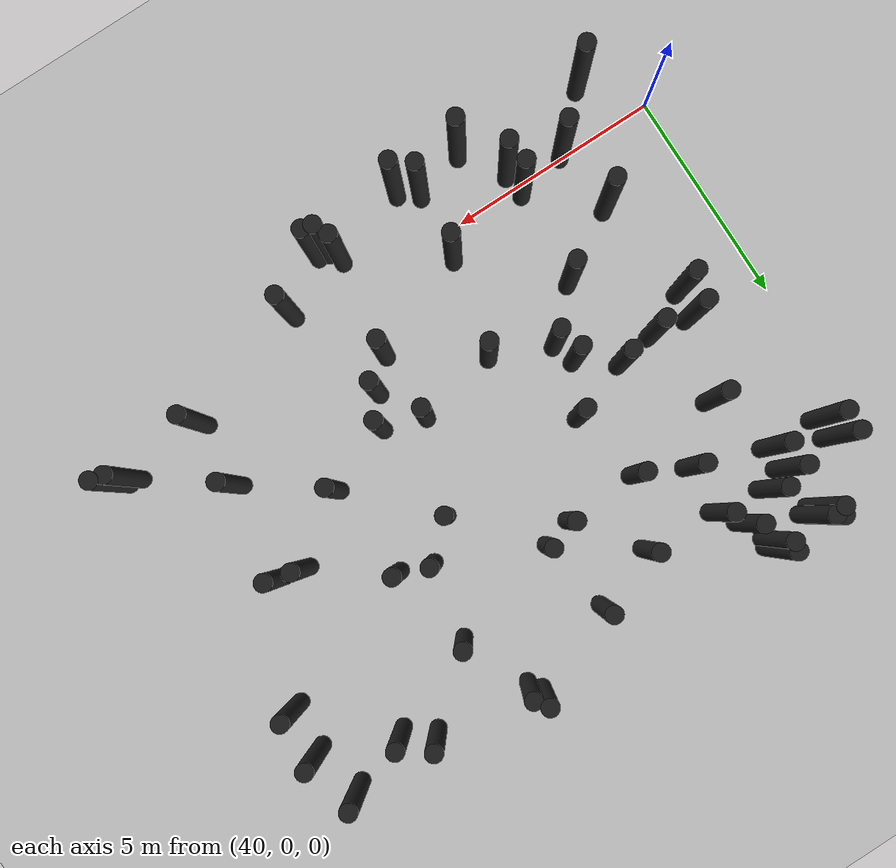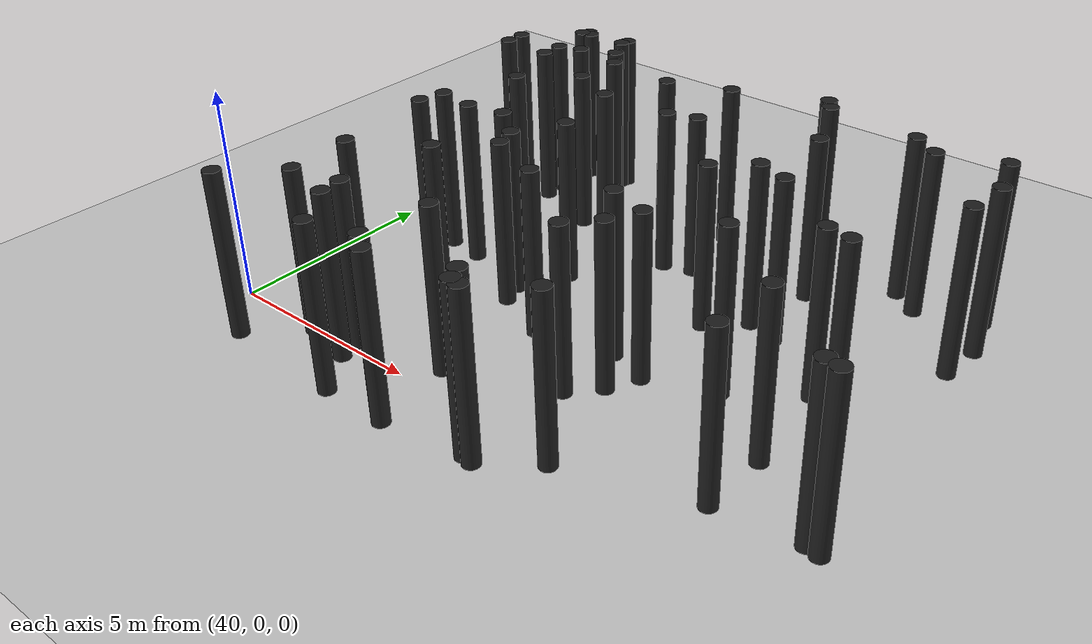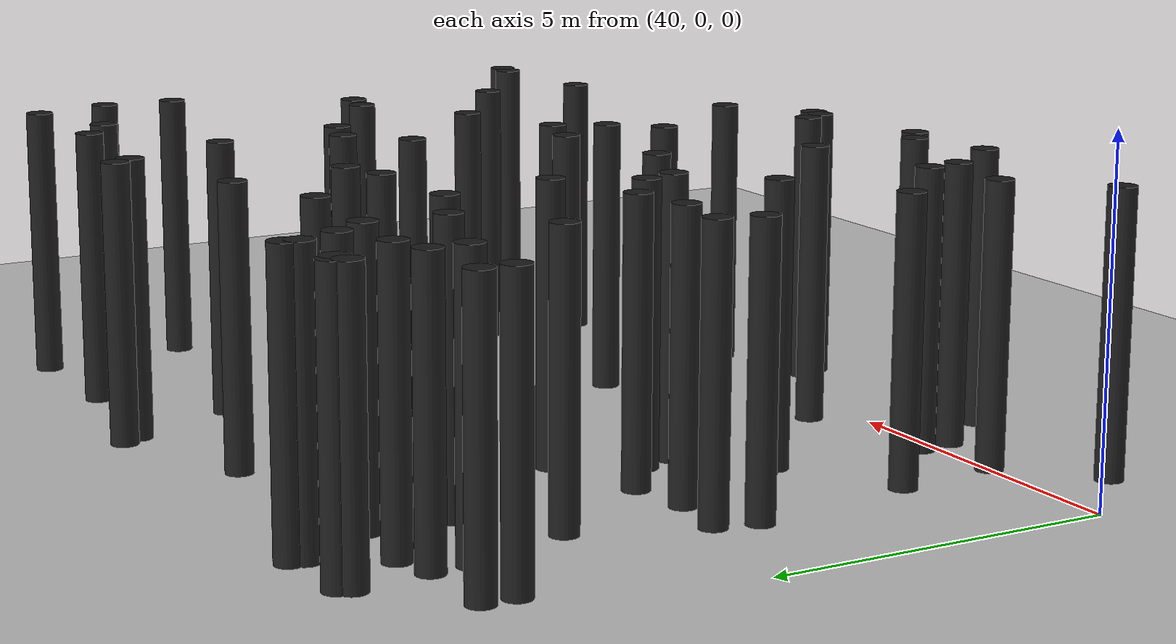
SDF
<sdf version="1.7">
 <world name="default">
  <model name="ground_plane">
   <static>1</static>
   <link name="link">
    <collision name="collision">
     <geometry><plane><normal>0 0 1</normal><size>200 200</size></plane></geometry>
     <surface><friction><ode><mu>100</mu><mu2>50</mu2></ode></friction></surface>
    </collision>
    <visual name="visual">
     <cast_shadows>0</cast_shadows>
     <geometry><plane><normal>0 0 1</normal><size>200 200</size></plane></geometry>
     <material>
      <script><uri>file://media/materials/scripts/gazebo.material</uri><name>Gazebo/Grey</name></script>
     </material>
    </visual>
   </link>
  </model>
  <model name="forest_clone_19_0">
   <pose>48.0424 3.29449 0.00499 0 -0 0</pose>
   <static>1</static>
   <link name="cylinder::link">
    <inertial>
     <mass>1</mass>
     <inertia><ixx>0.083</ixx><ixy>0</ixy><ixz>0</ixz><iyy>0.083</iyy><iyz>0</iyz><izz>0.083</izz></inertia>
    </inertial>
    <collision name="collision">
     <geometry><cylinder><radius>0.2</radius><length>4</length></cylinder></geometry>
    </collision>
    <visual name="visual">
     <geometry><cylinder><radius>0.2</radius><length>4</length></cylinder></geometry>
     <material>
      <script><uri>file://media/materials/scripts/gazebo.material</uri><name>Gazebo/Black</name></script>
     </material>
    </visual>
    <pose>0 0 2 0 -0 0</pose>
   </link>
  </model>
  <model name="forest_clone_29_0">
   <pose>43.5072 9.02108 -0.00067 0 -0 0</pose>
   <static>1</static>
   <link name="cylinder::link">
    <inertial>
     <mass>1</mass>
     <inertia><ixx>0.083</ixx><ixy>0</ixy><ixz>0</ixz><iyy>0.083</iyy><iyz>0</iyz><izz>0.083</izz></inertia>
    </inertial>
    <collision name="collision">
     <geometry><cylinder><radius>0.2</radius><length>4</length></cylinder></geometry>
    </collision>
    <visual name="visual">
     <geometry><cylinder><radius>0.2</radius><length>4</length></cylinder></geometry>
     <material>
      <script><uri>file://media/materials/scripts/gazebo.material</uri><name>Gazebo/Black</name></script>
     </material>
    </visual>
    <pose>0 0 2 0 -0 0</pose>
   </link>
  </model>
  <model name="forest_clone_34_0">
   <pose>41.9639 4.60308 -0.00078 0 -0 0</pose>
   <static>1</static>
   <link name="cylinder::link">
    <inertial>
     <mass>1</mass>
     <inertia><ixx>0.083</ixx><ixy>0</ixy><ixz>0</ixz><iyy>0.083</iyy><iyz>0</iyz><izz>0.083</izz></inertia>
    </inertial>
    <collision name="collision">
     <geometry><cylinder><radius>0.2</radius><length>4</length></cylinder></geometry>
    </collision>
    <visual name="visual">
     <geometry><cylinder><radius>0.2</radius><length>4</length></cylinder></geometry>
     <material>
      <script><uri>file://media/materials/scripts/gazebo.material</uri><name>Gazebo/Black</name></script>
     </material>
    </visual>
    <pose>0 0 2 0 -0 0</pose>
   </link>
  </model>
  <model name="forest_clone_43_0">
   <pose>45.8727 -1.3063 -0.00399 0 -0 0</pose>
   <static>1</static>
   <link name="cylinder::link">
    <inertial>
     <mass>1</mass>
     <inertia><ixx>0.083</ixx><ixy>0</ixy><ixz>0</ixz><iyy>0.083</iyy><iyz>0</iyz><izz>0.083</izz></inertia>
    </inertial>
    <collision name="collision">
     <geometry><cylinder><radius>0.2</radius><length>4</length></cylinder></geometry>
    </collision>
    <visual name="visual">
     <geometry><cylinder><radius>0.2</radius><length>4</length></cylinder></geometry>
     <material>
      <script><uri>file://media/materials/scripts/gazebo.material</uri><name>Gazebo/Black</name></script>
     </material>
    </visual>
    <pose>0 0 2 0 -0 0</pose>
   </link>
  </model>
  <model name="forest_clone_68_0">
   <pose>42.6809 8.6734 0.00253 0 -0 0</pose>
   <static>1</static>
   <link name="cylinder::link">
    <inertial>
     <mass>1</mass>
     <inertia><ixx>0.083</ixx><ixy>0</ixy><ixz>0</ixz><iyy>0.083</iyy><iyz>0</iyz><izz>0.083</izz></inertia>
    </inertial>
    <collision name="collision">
     <geometry><cylinder><radius>0.2</radius><length>4</length></cylinder></geometry>
    </collision>
    <visual name="visual">
     <geometry><cylinder><radius>0.2</radius><length>4</length></cylinder></geometry>
     <material>
      <script><uri>file://media/materials/scripts/gazebo.material</uri><name>Gazebo/Black</name></script>
     </material>
    </visual>
    <pose>0 0 2 0 -0 0</pose>
   </link>
  </model>
  <model name="forest_clone_82_0">
   <pose>42.0772 9.74618 0.00089 0 -0 0</pose>
   <static>1</static>
   <link name="cylinder::link">
    <inertial>
     <mass>1</mass>
     <inertia><ixx>0.083</ixx><ixy>0</ixy><ixz>0</ixz><iyy>0.083</iyy><iyz>0</iyz><izz>0.083</izz></inertia>
    </inertial>
    <collision name="collision">
     <geometry><cylinder><radius>0.2</radius><length>4</length></cylinder></geometry>
    </collision>
    <visual name="visual">
     <geometry><cylinder><radius>0.2</radius><length>4</length></cylinder></geometry>
     <material>
      <script><uri>file://media/materials/scripts/gazebo.material</uri><name>Gazebo/Black</name></script>
     </material>
    </visual>
    <pose>0 0 2 0 -0 0</pose>
   </link>
  </model>
  <model name="forest_clone_85_0">
   <pose>49.3415 9.45384 -0.00236 0 -0 0</pose>
   <static>1</static>
   <link name="cylinder::link">
    <inertial>
     <mass>1</mass>
     <inertia><ixx>0.083</ixx><ixy>0</ixy><ixz>0</ixz><iyy>0.083</iyy><iyz>0</iyz><izz>0.083</izz></inertia>
    </inertial>
    <collision name="collision">
     <geometry><cylinder><radius>0.2</radius><length>4</length></cylinder></geometry>
    </collision>
    <visual name="visual">
     <geometry><cylinder><radius>0.2</radius><length>4</length></cylinder></geometry>
     <material>
      <script><uri>file://media/materials/scripts/gazebo.material</uri><name>Gazebo/Black</name></script>
     </material>
    </visual>
    <pose>0 0 2 0 -0 0</pose>
   </link>
  </model>
  <model name="forest_clone_96_0">
   <pose>42.1526 1.51779 0.00212 0 -0 0</pose>
   <static>1</static>
   <link name="cylinder::link">
    <inertial>
     <mass>1</mass>
     <inertia><ixx>0.083</ixx><ixy>0</ixy><ixz>0</ixz><iyy>0.083</iyy><iyz>0</iyz><izz>0.083</izz></inertia>
    </inertial>
    <collision name="collision">
     <geometry><cylinder><radius>0.2</radius><length>4</length></cylinder></geometry>
    </collision>
    <visual name="visual">
     <geometry><cylinder><radius>0.2</radius><length>4</length></cylinder></geometry>
     <material>
      <script><uri>file://media/materials/scripts/gazebo.material</uri><name>Gazebo/Black</name></script>
     </material>
    </visual>
    <pose>0 0 2 0 -0 0</pose>
   </link>
  </model>
  <model name="forest_clone_102_0">
   <pose>42.3065 -0.032337 -0.00285 0 -0 0</pose>
   <static>1</static>
   <link name="cylinder::link">
    <inertial>
     <mass>1</mass>
     <inertia><ixx>0.083</ixx><ixy>0</ixy><ixz>0</ixz><iyy>0.083</iyy><iyz>0</iyz><izz>0.083</izz></inertia>
    </inertial>
    <collision name="collision">
     <geometry><cylinder><radius>0.2</radius><length>4</length></cylinder></geometry>
    </collision>
    <visual name="visual">
     <geometry><cylinder><radius>0.2</radius><length>4</length></cylinder></geometry>
     <material>
      <script><uri>file://media/materials/scripts/gazebo.material</uri><name>Gazebo/Black</name></script>
     </material>
    </visual>
    <pose>0 0 2 0 -0 0</pose>
   </link>
  </model>
  <model name="forest_clone_122_0">
   <pose>52.2105 8.79004 0.00262 0 -0 0</pose>
   <static>1</static>
   <link name="cylinder::link">
    <inertial>
     <mass>1</mass>
     <inertia><ixx>0.083</ixx><ixy>0</ixy><ixz>0</ixz><iyy>0.083</iyy><iyz>0</iyz><izz>0.083</izz></inertia>
    </inertial>
    <collision name="collision">
     <geometry><cylinder><radius>0.2</radius><length>4</length></cylinder></geometry>
    </collision>
    <visual name="visual">
     <geometry><cylinder><radius>0.2</radius><length>4</length></cylinder></geometry>
     <material>
      <script><uri>file://media/materials/scripts/gazebo.material</uri><name>Gazebo/Black</name></script>
     </material>
    </visual>
    <pose>0 0 2 0 -0 0</pose>
   </link>
  </model>
  <model name="forest_clone_125_0">
   <pose>40.8361 8.01843 0.00203 0 -0 0</pose>
   <static>1</static>
   <link name="cylinder::link">
    <inertial>
     <mass>1</mass>
     <inertia><ixx>0.083</ixx><ixy>0</ixy><ixz>0</ixz><iyy>0.083</iyy><iyz>0</iyz><izz>0.083</izz></inertia>
    </inertial>
    <collision name="collision">
     <geometry><cylinder><radius>0.2</radius><length>4</length></cylinder></geometry>
    </collision>
    <visual name="visual">
     <geometry><cylinder><radius>0.2</radius><length>4</length></cylinder></geometry>
     <material>
      <script><uri>file://media/materials/scripts/gazebo.material</uri><name>Gazebo/Black</name></script>
     </material>
    </visual>
    <pose>0 0 2 0 -0 0</pose>
   </link>
  </model>
  <model name="forest_clone_129_0">
   <pose>41.1575 -1.13078 -0.00331 0 -0 0</pose>
   <static>1</static>
   <link name="cylinder::link">
    <inertial>
     <mass>1</mass>
     <inertia><ixx>0.083</ixx><ixy>0</ixy><ixz>0</ixz><iyy>0.083</iyy><iyz>0</iyz><izz>0.083</izz></inertia>
    </inertial>
    <collision name="collision">
     <geometry><cylinder><radius>0.2</radius><length>4</length></cylinder></geometry>
    </collision>
    <visual name="visual">
     <geometry><cylinder><radius>0.2</radius><length>4</length></cylinder></geometry>
     <material>
      <script><uri>file://media/materials/scripts/gazebo.material</uri><name>Gazebo/Black</name></script>
     </material>
    </visual>
    <pose>0 0 2 0 -0 0</pose>
   </link>
  </model>
  <model name="forest_clone_131_0">
   <pose>50.5506 3.59292 -0.00168 0 -0 0</pose>
   <static>1</static>
   <link name="cylinder::link">
    <inertial>
     <mass>1</mass>
     <inertia><ixx>0.083</ixx><ixy>0</ixy><ixz>0</ixz><iyy>0.083</iyy><iyz>0</iyz><izz>0.083</izz></inertia>
    </inertial>
    <collision name="collision">
     <geometry><cylinder><radius>0.2</radius><length>4</length></cylinder></geometry>
    </collision>
    <visual name="visual">
     <geometry><cylinder><radius>0.2</radius><length>4</length></cylinder></geometry>
     <material>
      <script><uri>file://media/materials/scripts/gazebo.material</uri><name>Gazebo/Black</name></script>
     </material>
    </visual>
    <pose>0 0 2 0 -0 0</pose>
   </link>
  </model>
  <model name="forest_clone_134_0">
   <pose>48.1218 -1.08161 -0.00447 0 -0 0</pose>
   <static>1</static>
   <link name="cylinder::link">
    <inertial>
     <mass>1</mass>
     <inertia><ixx>0.083</ixx><ixy>0</ixy><ixz>0</ixz><iyy>0.083</iyy><iyz>0</iyz><izz>0.083</izz></inertia>
    </inertial>
    <collision name="collision">
     <geometry><cylinder><radius>0.2</radius><length>4</length></cylinder></geometry>
    </collision>
    <visual name="visual">
     <geometry><cylinder><radius>0.2</radius><length>4</length></cylinder></geometry>
     <material>
      <script><uri>file://media/materials/scripts/gazebo.material</uri><name>Gazebo/Black</name></script>
     </material>
    </visual>
    <pose>0 0 2 0 -0 0</pose>
   </link>
  </model>
  <model name="forest_clone_135_0">
   <pose>48.6354 2.26541 -0.00223 0 -0 0</pose>
   <static>1</static>
   <link name="cylinder::link">
    <inertial>
     <mass>1</mass>
     <inertia><ixx>0.083</ixx><ixy>0</ixy><ixz>0</ixz><iyy>0.083</iyy><iyz>0</iyz><izz>0.083</izz></inertia>
    </inertial>
    <collision name="collision">
     <geometry><cylinder><radius>0.2</radius><length>4</length></cylinder></geometry>
    </collision>
    <visual name="visual">
     <geometry><cylinder><radius>0.2</radius><length>4</length></cylinder></geometry>
     <material>
      <script><uri>file://media/materials/scripts/gazebo.material</uri><name>Gazebo/Black</name></script>
     </material>
    </visual>
    <pose>0 0 2 0 -0 0</pose>
   </link>
  </model>
  <model name="forest_clone_139_0">
   <pose>43.8027 4.63031 0.00215 0 -0 0</pose>
   <static>1</static>
   <link name="cylinder::link">
    <inertial>
     <mass>1</mass>
     <inertia><ixx>0.083</ixx><ixy>0</ixy><ixz>0</ixz><iyy>0.083</iyy><iyz>0</iyz><izz>0.083</izz></inertia>
    </inertial>
    <collision name="collision">
     <geometry><cylinder><radius>0.2</radius><length>4</length></cylinder></geometry>
    </collision>
    <visual name="visual">
     <geometry><cylinder><radius>0.2</radius><length>4</length></cylinder></geometry>
     <material>
      <script><uri>file://media/materials/scripts/gazebo.material</uri><name>Gazebo/Black</name></script>
     </material>
    </visual>
    <pose>0 0 2 0 -0 0</pose>
   </link>
  </model>
  <model name="forest_clone_143_0">
   <pose>54.1416 0.960834 0.00128 0 -0 0</pose>
   <static>1</static>
   <link name="cylinder::link">
    <inertial>
     <mass>1</mass>
     <inertia><ixx>0.083</ixx><ixy>0</ixy><ixz>0</ixz><iyy>0.083</iyy><iyz>0</iyz><izz>0.083</izz></inertia>
    </inertial>
    <collision name="collision">
     <geometry><cylinder><radius>0.2</radius><length>4</length></cylinder></geometry>
    </collision>
    <visual name="visual">
     <geometry><cylinder><radius>0.2</radius><length>4</length></cylinder></geometry>
     <material>
      <script><uri>file://media/materials/scripts/gazebo.material</uri><name>Gazebo/Black</name></script>
     </material>
    </visual>
    <pose>0 0 2 0 -0 0</pose>
   </link>
  </model>
  <model name="forest_clone_3_clone_0">
   <pose>47.3433 7.12182 0.00023 0 -0 0</pose>
   <static>1</static>
   <link name="cylinder::link">
    <inertial>
     <mass>1</mass>
     <inertia><ixx>0.083</ixx><ixy>0</ixy><ixz>0</ixz><iyy>0.083</iyy><iyz>0</iyz><izz>0.083</izz></inertia>
    </inertial>
    <collision name="collision">
     <geometry><cylinder><radius>0.2</radius><length>4</length></cylinder></geometry>
    </collision>
    <visual name="visual">
     <geometry><cylinder><radius>0.2</radius><length>4</length></cylinder></geometry>
     <material>
      <script><uri>file://media/materials/scripts/gazebo.material</uri><name>Gazebo/Black</name></script>
     </material>
    </visual>
    <pose>0 0 2 0 -0 0</pose>
   </link>
  </model>
  <model name="forest_clone_3_clone_0_clone">
   <pose>49.6477 6.09228 0.00023 0 -0 0</pose>
   <static>1</static>
   <link name="cylinder::link">
    <inertial>
     <mass>1</mass>
     <inertia><ixx>0.083</ixx><ixy>0</ixy><ixz>0</ixz><iyy>0.083</iyy><iyz>0</iyz><izz>0.083</izz></inertia>
    </inertial>
    <collision name="collision">
     <geometry><cylinder><radius>0.2</radius><length>4</length></cylinder></geometry>
    </collision>
    <visual name="visual">
     <geometry><cylinder><radius>0.2</radius><length>4</length></cylinder></geometry>
     <material>
      <script><uri>file://media/materials/scripts/gazebo.material</uri><name>Gazebo/Black</name></script>
     </material>
    </visual>
    <pose>0 0 2 0 -0 0</pose>
   </link>
  </model>
  <model name="forest_clone_14_1">
   <pose>48.0483 1.63203 -0.0015 0 -0 0</pose>
   <static>1</static>
   <link name="cylinder::link">
    <inertial>
     <mass>1</mass>
     <inertia><ixx>0.083</ixx><ixy>0</ixy><ixz>0</ixz><iyy>0.083</iyy><iyz>0</iyz><izz>0.083</izz></inertia>
    </inertial>
    <collision name="collision">
     <geometry><cylinder><radius>0.2</radius><length>4</length></cylinder></geometry>
    </collision>
    <visual name="visual">
     <geometry><cylinder><radius>0.2</radius><length>4</length></cylinder></geometry>
     <material>
      <script><uri>file://media/materials/scripts/gazebo.material</uri><name>Gazebo/Black</name></script>
     </material>
    </visual>
    <pose>0 0 2 0 -0 0</pose>
   </link>
  </model>
  <model name="forest_clone_19_1">
   <pose>45.6048 0.637672 -0.0012 0 -0 0</pose>
   <static>1</static>
   <link name="cylinder::link">
    <inertial>
     <mass>1</mass>
     <inertia><ixx>0.083</ixx><ixy>0</ixy><ixz>0</ixz><iyy>0.083</iyy><iyz>0</iyz><izz>0.083</izz></inertia>
    </inertial>
    <collision name="collision">
     <geometry><cylinder><radius>0.2</radius><length>4</length></cylinder></geometry>
    </collision>
    <visual name="visual">
     <geometry><cylinder><radius>0.2</radius><length>4</length></cylinder></geometry>
     <material>
      <script><uri>file://media/materials/scripts/gazebo.material</uri><name>Gazebo/Black</name></script>
     </material>
    </visual>
    <pose>0 0 2 0 -0 0</pose>
   </link>
  </model>
  <model name="forest_clone_21_1">
   <pose>42.8881 4.47036 0.00469 0 -0 0</pose>
   <static>1</static>
   <link name="cylinder::link">
    <inertial>
     <mass>1</mass>
     <inertia><ixx>0.083</ixx><ixy>0</ixy><ixz>0</ixz><iyy>0.083</iyy><iyz>0</iyz><izz>0.083</izz></inertia>
    </inertial>
    <collision name="collision">
     <geometry><cylinder><radius>0.2</radius><length>4</length></cylinder></geometry>
    </collision>
    <visual name="visual">
     <geometry><cylinder><radius>0.2</radius><length>4</length></cylinder></geometry>
     <material>
      <script><uri>file://media/materials/scripts/gazebo.material</uri><name>Gazebo/Black</name></script>
     </material>
    </visual>
    <pose>0 0 2 0 -0 0</pose>
   </link>
  </model>
  <model name="forest_clone_25_1">
   <pose>47.0556 8.89095 0.00485 0 -0 0</pose>
   <static>1</static>
   <link name="cylinder::link">
    <inertial>
     <mass>1</mass>
     <inertia><ixx>0.083</ixx><ixy>0</ixy><ixz>0</ixz><iyy>0.083</iyy><iyz>0</iyz><izz>0.083</izz></inertia>
    </inertial>
    <collision name="collision">
     <geometry><cylinder><radius>0.2</radius><length>4</length></cylinder></geometry>
    </collision>
    <visual name="visual">
     <geometry><cylinder><radius>0.2</radius><length>4</length></cylinder></geometry>
     <material>
      <script><uri>file://media/materials/scripts/gazebo.material</uri><name>Gazebo/Black</name></script>
     </material>
    </visual>
    <pose>0 0 2 0 -0 0</pose>
   </link>
  </model>
  <model name="forest_clone_35_1">
   <pose>52.6114 4.53154 -0.00362 0 -0 0</pose>
   <static>1</static>
   <link name="cylinder::link">
    <inertial>
     <mass>1</mass>
     <inertia><ixx>0.083</ixx><ixy>0</ixy><ixz>0</ixz><iyy>0.083</iyy><iyz>0</iyz><izz>0.083</izz></inertia>
    </inertial>
    <collision name="collision">
     <geometry><cylinder><radius>0.2</radius><length>4</length></cylinder></geometry>
    </collision>
    <visual name="visual">
     <geometry><cylinder><radius>0.2</radius><length>4</length></cylinder></geometry>
     <material>
      <script><uri>file://media/materials/scripts/gazebo.material</uri><name>Gazebo/Black</name></script>
     </material>
    </visual>
    <pose>0 0 2 0 -0 0</pose>
   </link>
  </model>
  <model name="forest_clone_40_1">
   <pose>41.8175 3.99241 -0.00416 0 -0 0</pose>
   <static>1</static>
   <link name="cylinder::link">
    <inertial>
     <mass>1</mass>
     <inertia><ixx>0.083</ixx><ixy>0</ixy><ixz>0</ixz><iyy>0.083</iyy><iyz>0</iyz><izz>0.083</izz></inertia>
    </inertial>
    <collision name="collision">
     <geometry><cylinder><radius>0.2</radius><length>4</length></cylinder></geometry>
    </collision>
    <visual name="visual">
     <geometry><cylinder><radius>0.2</radius><length>4</length></cylinder></geometry>
     <material>
      <script><uri>file://media/materials/scripts/gazebo.material</uri><name>Gazebo/Black</name></script>
     </material>
    </visual>
    <pose>0 0 2 0 -0 0</pose>
   </link>
  </model>
  <model name="forest_clone_55_1">
   <pose>42.2085 9.64438 0.00137 0 -0 0</pose>
   <static>1</static>
   <link name="cylinder::link">
    <inertial>
     <mass>1</mass>
     <inertia><ixx>0.083</ixx><ixy>0</ixy><ixz>0</ixz><iyy>0.083</iyy><iyz>0</iyz><izz>0.083</izz></inertia>
    </inertial>
    <collision name="collision">
     <geometry><cylinder><radius>0.2</radius><length>4</length></cylinder></geometry>
    </collision>
    <visual name="visual">
     <geometry><cylinder><radius>0.2</radius><length>4</length></cylinder></geometry>
     <material>
      <script><uri>file://media/materials/scripts/gazebo.material</uri><name>Gazebo/Black</name></script>
     </material>
    </visual>
    <pose>0 0 2 0 -0 0</pose>
   </link>
  </model>
  <model name="forest_clone_57_1">
   <pose>52.2542 0.733148 -0.00216 0 -0 0</pose>
   <static>1</static>
   <link name="cylinder::link">
    <inertial>
     <mass>1</mass>
     <inertia><ixx>0.083</ixx><ixy>0</ixy><ixz>0</ixz><iyy>0.083</iyy><iyz>0</iyz><izz>0.083</izz></inertia>
    </inertial>
    <collision name="collision">
     <geometry><cylinder><radius>0.2</radius><length>4</length></cylinder></geometry>
    </collision>
    <visual name="visual">
     <geometry><cylinder><radius>0.2</radius><length>4</length></cylinder></geometry>
     <material>
      <script><uri>file://media/materials/scripts/gazebo.material</uri><name>Gazebo/Black</name></script>
     </material>
    </visual>
    <pose>0 0 2 0 -0 0</pose>
   </link>
  </model>
  <model name="forest_clone_73_1">
   <pose>54.4463 0.898385 0.00175 0 -0 0</pose>
   <static>1</static>
   <link name="cylinder::link">
    <inertial>
     <mass>1</mass>
     <inertia><ixx>0.083</ixx><ixy>0</ixy><ixz>0</ixz><iyy>0.083</iyy><iyz>0</iyz><izz>0.083</izz></inertia>
    </inertial>
    <collision name="collision">
     <geometry><cylinder><radius>0.2</radius><length>4</length></cylinder></geometry>
    </collision>
    <visual name="visual">
     <geometry><cylinder><radius>0.2</radius><length>4</length></cylinder></geometry>
     <material>
      <script><uri>file://media/materials/scripts/gazebo.material</uri><name>Gazebo/Black</name></script>
     </material>
    </visual>
    <pose>0 0 2 0 -0 0</pose>
   </link>
  </model>
  <model name="forest_clone_75_1">
   <pose>47.8763 -1.02607 -0.00248 0 -0 0</pose>
   <static>1</static>
   <link name="cylinder::link">
    <inertial>
     <mass>1</mass>
     <inertia><ixx>0.083</ixx><ixy>0</ixy><ixz>0</ixz><iyy>0.083</iyy><iyz>0</iyz><izz>0.083</izz></inertia>
    </inertial>
    <collision name="collision">
     <geometry><cylinder><radius>0.2</radius><length>4</length></cylinder></geometry>
    </collision>
    <visual name="visual">
     <geometry><cylinder><radius>0.2</radius><length>4</length></cylinder></geometry>
     <material>
      <script><uri>file://media/materials/scripts/gazebo.material</uri><name>Gazebo/Black</name></script>
     </material>
    </visual>
    <pose>0 0 2 0 -0 0</pose>
   </link>
  </model>
  <model name="forest_clone_92_1">
   <pose>47.7128 -0.696898 -0.00268 0 -0 0</pose>
   <static>1</static>
   <link name="cylinder::link">
    <inertial>
     <mass>1</mass>
     <inertia><ixx>0.083</ixx><ixy>0</ixy><ixz>0</ixz><iyy>0.083</iyy><iyz>0</iyz><izz>0.083</izz></inertia>
    </inertial>
    <collision name="collision">
     <geometry><cylinder><radius>0.2</radius><length>4</length></cylinder></geometry>
    </collision>
    <visual name="visual">
     <geometry><cylinder><radius>0.2</radius><length>4</length></cylinder></geometry>
     <material>
      <script><uri>file://media/materials/scripts/gazebo.material</uri><name>Gazebo/Black</name></script>
     </material>
    </visual>
    <pose>0 0 2 0 -0 0</pose>
   </link>
  </model>
  <model name="forest_clone_95_1">
   <pose>44.9181 6.85127 0.00438 0 -0 0</pose>
   <static>1</static>
   <link name="cylinder::link">
    <inertial>
     <mass>1</mass>
     <inertia><ixx>0.083</ixx><ixy>0</ixy><ixz>0</ixz><iyy>0.083</iyy><iyz>0</iyz><izz>0.083</izz></inertia>
    </inertial>
    <collision name="collision">
     <geometry><cylinder><radius>0.2</radius><length>4</length></cylinder></geometry>
    </collision>
    <visual name="visual">
     <geometry><cylinder><radius>0.2</radius><length>4</length></cylinder></geometry>
     <material>
      <script><uri>file://media/materials/scripts/gazebo.material</uri><name>Gazebo/Black</name></script>
     </material>
    </visual>
    <pose>0 0 2 0 -0 0</pose>
   </link>
  </model>
  <model name="forest_clone_100_1">
   <pose>45.4383 -0.979306 -0.00011 0 -0 0</pose>
   <static>1</static>
   <link name="cylinder::link">
    <inertial>
     <mass>1</mass>
     <inertia><ixx>0.083</ixx><ixy>0</ixy><ixz>0</ixz><iyy>0.083</iyy><iyz>0</iyz><izz>0.083</izz></inertia>
    </inertial>
    <collision name="collision">
     <geometry><cylinder><radius>0.2</radius><length>4</length></cylinder></geometry>
    </collision>
    <visual name="visual">
     <geometry><cylinder><radius>0.2</radius><length>4</length></cylinder></geometry>
     <material>
      <script><uri>file://media/materials/scripts/gazebo.material</uri><name>Gazebo/Black</name></script>
     </material>
    </visual>
    <pose>0 0 2 0 -0 0</pose>
   </link>
  </model>
  <model name="forest_clone_118_1">
   <pose>43.206 9.64206 0.00489 0 -0 0</pose>
   <static>1</static>
   <link name="cylinder::link">
    <inertial>
     <mass>1</mass>
     <inertia><ixx>0.083</ixx><ixy>0</ixy><ixz>0</ixz><iyy>0.083</iyy><iyz>0</iyz><izz>0.083</izz></inertia>
    </inertial>
    <collision name="collision">
     <geometry><cylinder><radius>0.2</radius><length>4</length></cylinder></geometry>
    </collision>
    <visual name="visual">
     <geometry><cylinder><radius>0.2</radius><length>4</length></cylinder></geometry>
     <material>
      <script><uri>file://media/materials/scripts/gazebo.material</uri><name>Gazebo/Black</name></script>
     </material>
    </visual>
    <pose>0 0 2 0 -0 0</pose>
   </link>
  </model>
  <model name="forest_clone_120_1">
   <pose>49.2925 -0.235182 0.00052 0 -0 0</pose>
   <static>1</static>
   <link name="cylinder::link">
    <inertial>
     <mass>1</mass>
     <inertia><ixx>0.083</ixx><ixy>0</ixy><ixz>0</ixz><iyy>0.083</iyy><iyz>0</iyz><izz>0.083</izz></inertia>
    </inertial>
    <collision name="collision">
     <geometry><cylinder><radius>0.2</radius><length>4</length></cylinder></geometry>
    </collision>
    <visual name="visual">
     <geometry><cylinder><radius>0.2</radius><length>4</length></cylinder></geometry>
     <material>
      <script><uri>file://media/materials/scripts/gazebo.material</uri><name>Gazebo/Black</name></script>
     </material>
    </visual>
    <pose>0 0 2 0 -0 0</pose>
   </link>
  </model>
  <model name="forest_clone_135_1">
   <pose>42.1132 8.50287 -0.00285 0 -0 0</pose>
   <static>1</static>
   <link name="cylinder::link">
    <inertial>
     <mass>1</mass>
     <inertia><ixx>0.083</ixx><ixy>0</ixy><ixz>0</ixz><iyy>0.083</iyy><iyz>0</iyz><izz>0.083</izz></inertia>
    </inertial>
    <collision name="collision">
     <geometry><cylinder><radius>0.2</radius><length>4</length></cylinder></geometry>
    </collision>
    <visual name="visual">
     <geometry><cylinder><radius>0.2</radius><length>4</length></cylinder></geometry>
     <material>
      <script><uri>file://media/materials/scripts/gazebo.material</uri><name>Gazebo/Black</name></script>
     </material>
    </visual>
    <pose>0 0 2 0 -0 0</pose>
   </link>
  </model>
  <model name="forest_clone_136_1">
   <pose>43.5039 0.214935 -0.00047 0 -0 0</pose>
   <static>1</static>
   <link name="cylinder::link">
    <inertial>
     <mass>1</mass>
     <inertia><ixx>0.083</ixx><ixy>0</ixy><ixz>0</ixz><iyy>0.083</iyy><iyz>0</iyz><izz>0.083</izz></inertia>
    </inertial>
    <collision name="collision">
     <geometry><cylinder><radius>0.2</radius><length>4</length></cylinder></geometry>
    </collision>
    <visual name="visual">
     <geometry><cylinder><radius>0.2</radius><length>4</length></cylinder></geometry>
     <material>
      <script><uri>file://media/materials/scripts/gazebo.material</uri><name>Gazebo/Black</name></script>
     </material>
    </visual>
    <pose>0 0 2 0 -0 0</pose>
   </link>
  </model>
  <model name="forest_clone_138_1">
   <pose>48.9907 2.98593 -0.00275 0 -0 0</pose>
   <static>1</static>
   <link name="cylinder::link">
    <inertial>
     <mass>1</mass>
     <inertia><ixx>0.083</ixx><ixy>0</ixy><ixz>0</ixz><iyy>0.083</iyy><iyz>0</iyz><izz>0.083</izz></inertia>
    </inertial>
    <collision name="collision">
     <geometry><cylinder><radius>0.2</radius><length>4</length></cylinder></geometry>
    </collision>
    <visual name="visual">
     <geometry><cylinder><radius>0.2</radius><length>4</length></cylinder></geometry>
     <material>
      <script><uri>file://media/materials/scripts/gazebo.material</uri><name>Gazebo/Black</name></script>
     </material>
    </visual>
    <pose>0 0 2 0 -0 0</pose>
   </link>
  </model>
  <model name="forest_clone_146_1">
   <pose>43.5696 -0.32348 -0.00194 0 -0 0</pose>
   <static>1</static>
   <link name="cylinder::link">
    <inertial>
     <mass>1</mass>
     <inertia><ixx>0.083</ixx><ixy>0</ixy><ixz>0</ixz><iyy>0.083</iyy><iyz>0</iyz><izz>0.083</izz></inertia>
    </inertial>
    <collision name="collision">
     <geometry><cylinder><radius>0.2</radius><length>4</length></cylinder></geometry>
    </collision>
    <visual name="visual">
     <geometry><cylinder><radius>0.2</radius><length>4</length></cylinder></geometry>
     <material>
      <script><uri>file://media/materials/scripts/gazebo.material</uri><name>Gazebo/Black</name></script>
     </material>
    </visual>
    <pose>0 0 2 0 -0 0</pose>
   </link>
  </model>
  <model name="forest_clone_4_2">
   <pose>40.8382 8.49759 0.00306 0 -0 0</pose>
   <static>1</static>
   <link name="cylinder::link">
    <inertial>
     <mass>1</mass>
     <inertia><ixx>0.083</ixx><ixy>0</ixy><ixz>0</ixz><iyy>0.083</iyy><iyz>0</iyz><izz>0.083</izz></inertia>
    </inertial>
    <collision name="collision">
     <geometry><cylinder><radius>0.2</radius><length>4</length></cylinder></geometry>
    </collision>
    <visual name="visual">
     <geometry><cylinder><radius>0.2</radius><length>4</length></cylinder></geometry>
     <material>
      <script><uri>file://media/materials/scripts/gazebo.material</uri><name>Gazebo/Black</name></script>
     </material>
    </visual>
    <pose>0 0 2 0 -0 0</pose>
   </link>
  </model>
  <model name="forest_clone_7_2">
   <pose>43.8747 8.50761 -0.00041 0 -0 0</pose>
   <static>1</static>
   <link name="cylinder::link">
    <inertial>
     <mass>1</mass>
     <inertia><ixx>0.083</ixx><ixy>0</ixy><ixz>0</ixz><iyy>0.083</iyy><iyz>0</iyz><izz>0.083</izz></inertia>
    </inertial>
    <collision name="collision">
     <geometry><cylinder><radius>0.2</radius><length>4</length></cylinder></geometry>
    </collision>
    <visual name="visual">
     <geometry><cylinder><radius>0.2</radius><length>4</length></cylinder></geometry>
     <material>
      <script><uri>file://media/materials/scripts/gazebo.material</uri><name>Gazebo/Black</name></script>
     </material>
    </visual>
    <pose>0 0 2 0 -0 0</pose>
   </link>
  </model>
  <model name="forest_clone_9_2">
   <pose>46.6575 6.91629 -0.00113 0 -0 0</pose>
   <static>1</static>
   <link name="cylinder::link">
    <inertial>
     <mass>1</mass>
     <inertia><ixx>0.083</ixx><ixy>0</ixy><ixz>0</ixz><iyy>0.083</iyy><iyz>0</iyz><izz>0.083</izz></inertia>
    </inertial>
    <collision name="collision">
     <geometry><cylinder><radius>0.2</radius><length>4</length></cylinder></geometry>
    </collision>
    <visual name="visual">
     <geometry><cylinder><radius>0.2</radius><length>4</length></cylinder></geometry>
     <material>
      <script><uri>file://media/materials/scripts/gazebo.material</uri><name>Gazebo/Black</name></script>
     </material>
    </visual>
    <pose>0 0 2 0 -0 0</pose>
   </link>
  </model>
  <model name="forest_clone_10_2">
   <pose>45.5876 8.35977 0.00354 0 -0 0</pose>
   <static>1</static>
   <link name="cylinder::link">
    <inertial>
     <mass>1</mass>
     <inertia><ixx>0.083</ixx><ixy>0</ixy><ixz>0</ixz><iyy>0.083</iyy><iyz>0</iyz><izz>0.083</izz></inertia>
    </inertial>
    <collision name="collision">
     <geometry><cylinder><radius>0.2</radius><length>4</length></cylinder></geometry>
    </collision>
    <visual name="visual">
     <geometry><cylinder><radius>0.2</radius><length>4</length></cylinder></geometry>
     <material>
      <script><uri>file://media/materials/scripts/gazebo.material</uri><name>Gazebo/Black</name></script>
     </material>
    </visual>
    <pose>0 0 2 0 -0 0</pose>
   </link>
  </model>
  <model name="forest_clone_18_2">
   <pose>42.1149 7.94785 0.00176 0 -0 0</pose>
   <static>1</static>
   <link name="cylinder::link">
    <inertial>
     <mass>1</mass>
     <inertia><ixx>0.083</ixx><ixy>0</ixy><ixz>0</ixz><iyy>0.083</iyy><iyz>0</iyz><izz>0.083</izz></inertia>
    </inertial>
    <collision name="collision">
     <geometry><cylinder><radius>0.2</radius><length>4</length></cylinder></geometry>
    </collision>
    <visual name="visual">
     <geometry><cylinder><radius>0.2</radius><length>4</length></cylinder></geometry>
     <material>
      <script><uri>file://media/materials/scripts/gazebo.material</uri><name>Gazebo/Black</name></script>
     </material>
    </visual>
    <pose>0 0 2 0 -0 0</pose>
   </link>
  </model>
  <model name="forest_clone_20_2">
   <pose>51.5772 9.23691 -0.00364 0 -0 0</pose>
   <static>1</static>
   <link name="cylinder::link">
    <inertial>
     <mass>1</mass>
     <inertia><ixx>0.083</ixx><ixy>0</ixy><ixz>0</ixz><iyy>0.083</iyy><iyz>0</iyz><izz>0.083</izz></inertia>
    </inertial>
    <collision name="collision">
     <geometry><cylinder><radius>0.2</radius><length>4</length></cylinder></geometry>
    </collision>
    <visual name="visual">
     <geometry><cylinder><radius>0.2</radius><length>4</length></cylinder></geometry>
     <material>
      <script><uri>file://media/materials/scripts/gazebo.material</uri><name>Gazebo/Black</name></script>
     </material>
    </visual>
    <pose>0 0 2 0 -0 0</pose>
   </link>
  </model>
  <model name="forest_clone_28_2">
   <pose>50.3842 5.83922 0.00051 0 -0 0</pose>
   <static>1</static>
   <link name="cylinder::link">
    <inertial>
     <mass>1</mass>
     <inertia><ixx>0.083</ixx><ixy>0</ixy><ixz>0</ixz><iyy>0.083</iyy><iyz>0</iyz><izz>0.083</izz></inertia>
    </inertial>
    <collision name="collision">
     <geometry><cylinder><radius>0.2</radius><length>4</length></cylinder></geometry>
    </collision>
    <visual name="visual">
     <geometry><cylinder><radius>0.2</radius><length>4</length></cylinder></geometry>
     <material>
      <script><uri>file://media/materials/scripts/gazebo.material</uri><name>Gazebo/Black</name></script>
     </material>
    </visual>
    <pose>0 0 2 0 -0 0</pose>
   </link>
  </model>
  <model name="forest_clone_42_2">
   <pose>52.0442 4.65275 -0.00338 0 -0 0</pose>
   <static>1</static>
   <link name="cylinder::link">
    <inertial>
     <mass>1</mass>
     <inertia><ixx>0.083</ixx><ixy>0</ixy><ixz>0</ixz><iyy>0.083</iyy><iyz>0</iyz><izz>0.083</izz></inertia>
    </inertial>
    <collision name="collision">
     <geometry><cylinder><radius>0.2</radius><length>4</length></cylinder></geometry>
    </collision>
    <visual name="visual">
     <geometry><cylinder><radius>0.2</radius><length>4</length></cylinder></geometry>
     <material>
      <script><uri>file://media/materials/scripts/gazebo.material</uri><name>Gazebo/Black</name></script>
     </material>
    </visual>
    <pose>0 0 2 0 -0 0</pose>
   </link>
  </model>
  <model name="forest_clone_46_2">
   <pose>42.6094 6.39092 0.00205 0 -0 0</pose>
   <static>1</static>
   <link name="cylinder::link">
    <inertial>
     <mass>1</mass>
     <inertia><ixx>0.083</ixx><ixy>0</ixy><ixz>0</ixz><iyy>0.083</iyy><iyz>0</iyz><izz>0.083</izz></inertia>
    </inertial>
    <collision name="collision">
     <geometry><cylinder><radius>0.2</radius><length>4</length></cylinder></geometry>
    </collision>
    <visual name="visual">
     <geometry><cylinder><radius>0.2</radius><length>4</length></cylinder></geometry>
     <material>
      <script><uri>file://media/materials/scripts/gazebo.material</uri><name>Gazebo/Black</name></script>
     </material>
    </visual>
    <pose>0 0 2 0 -0 0</pose>
   </link>
  </model>
  <model name="forest_clone_47_2">
   <pose>43.8112 7.36397 0.00134 0 -0 0</pose>
   <static>1</static>
   <link name="cylinder::link">
    <inertial>
     <mass>1</mass>
     <inertia><ixx>0.083</ixx><ixy>0</ixy><ixz>0</ixz><iyy>0.083</iyy><iyz>0</iyz><izz>0.083</izz></inertia>
    </inertial>
    <collision name="collision">
     <geometry><cylinder><radius>0.2</radius><length>4</length></cylinder></geometry>
    </collision>
    <visual name="visual">
     <geometry><cylinder><radius>0.2</radius><length>4</length></cylinder></geometry>
     <material>
      <script><uri>file://media/materials/scripts/gazebo.material</uri><name>Gazebo/Black</name></script>
     </material>
    </visual>
    <pose>0 0 2 0 -0 0</pose>
   </link>
  </model>
  <model name="forest_clone_65_2">
   <pose>53.9433 8.14472 0.00133 0 -0 0</pose>
   <static>1</static>
   <link name="cylinder::link">
    <inertial>
     <mass>1</mass>
     <inertia><ixx>0.083</ixx><ixy>0</ixy><ixz>0</ixz><iyy>0.083</iyy><iyz>0</iyz><izz>0.083</izz></inertia>
    </inertial>
    <collision name="collision">
     <geometry><cylinder><radius>0.2</radius><length>4</length></cylinder></geometry>
    </collision>
    <visual name="visual">
     <geometry><cylinder><radius>0.2</radius><length>4</length></cylinder></geometry>
     <material>
      <script><uri>file://media/materials/scripts/gazebo.material</uri><name>Gazebo/Black</name></script>
     </material>
    </visual>
    <pose>0 0 2 0 -0 0</pose>
   </link>
  </model>
  <model name="forest_clone_68_2">
   <pose>53.8349 7.07659 0.00451 0 -0 0</pose>
   <static>1</static>
   <link name="cylinder::link">
    <inertial>
     <mass>1</mass>
     <inertia><ixx>0.083</ixx><ixy>0</ixy><ixz>0</ixz><iyy>0.083</iyy><iyz>0</iyz><izz>0.083</izz></inertia>
    </inertial>
    <collision name="collision">
     <geometry><cylinder><radius>0.2</radius><length>4</length></cylinder></geometry>
    </collision>
    <visual name="visual">
     <geometry><cylinder><radius>0.2</radius><length>4</length></cylinder></geometry>
     <material>
      <script><uri>file://media/materials/scripts/gazebo.material</uri><name>Gazebo/Black</name></script>
     </material>
    </visual>
    <pose>0 0 2 0 -0 0</pose>
   </link>
  </model>
  <model name="forest_clone_76_2">
   <pose>53.6387 9.28941 0.0016 0 -0 0</pose>
   <static>1</static>
   <link name="cylinder::link">
    <inertial>
     <mass>1</mass>
     <inertia><ixx>0.083</ixx><ixy>0</ixy><ixz>0</ixz><iyy>0.083</iyy><iyz>0</iyz><izz>0.083</izz></inertia>
    </inertial>
    <collision name="collision">
     <geometry><cylinder><radius>0.2</radius><length>4</length></cylinder></geometry>
    </collision>
    <visual name="visual">
     <geometry><cylinder><radius>0.2</radius><length>4</length></cylinder></geometry>
     <material>
      <script><uri>file://media/materials/scripts/gazebo.material</uri><name>Gazebo/Black</name></script>
     </material>
    </visual>
    <pose>0 0 2 0 -0 0</pose>
   </link>
  </model>
  <model name="forest_clone_91_2">
   <pose>44.2427 -1.30002 0.0018 0 -0 0</pose>
   <static>1</static>
   <link name="cylinder::link">
    <inertial>
     <mass>1</mass>
     <inertia><ixx>0.083</ixx><ixy>0</ixy><ixz>0</ixz><iyy>0.083</iyy><iyz>0</iyz><izz>0.083</izz></inertia>
    </inertial>
    <collision name="collision">
     <geometry><cylinder><radius>0.2</radius><length>4</length></cylinder></geometry>
    </collision>
    <visual name="visual">
     <geometry><cylinder><radius>0.2</radius><length>4</length></cylinder></geometry>
     <material>
      <script><uri>file://media/materials/scripts/gazebo.material</uri><name>Gazebo/Black</name></script>
     </material>
    </visual>
    <pose>0 0 2 0 -0 0</pose>
   </link>
  </model>
  <model name="forest_clone_108_2">
   <pose>48.8381 5.37355 0.00489 0 -0 0</pose>
   <static>1</static>
   <link name="cylinder::link">
    <inertial>
     <mass>1</mass>
     <inertia><ixx>0.083</ixx><ixy>0</ixy><ixz>0</ixz><iyy>0.083</iyy><iyz>0</iyz><izz>0.083</izz></inertia>
    </inertial>
    <collision name="collision">
     <geometry><cylinder><radius>0.2</radius><length>4</length></cylinder></geometry>
    </collision>
    <visual name="visual">
     <geometry><cylinder><radius>0.2</radius><length>4</length></cylinder></geometry>
     <material>
      <script><uri>file://media/materials/scripts/gazebo.material</uri><name>Gazebo/Black</name></script>
     </material>
    </visual>
    <pose>0 0 2 0 -0 0</pose>
   </link>
  </model>
  <model name="forest_clone_118_2">
   <pose>43.2567 9.84025 0.00013 0 -0 0</pose>
   <static>1</static>
   <link name="cylinder::link">
    <inertial>
     <mass>1</mass>
     <inertia><ixx>0.083</ixx><ixy>0</ixy><ixz>0</ixz><iyy>0.083</iyy><iyz>0</iyz><izz>0.083</izz></inertia>
    </inertial>
    <collision name="collision">
     <geometry><cylinder><radius>0.2</radius><length>4</length></cylinder></geometry>
    </collision>
    <visual name="visual">
     <geometry><cylinder><radius>0.2</radius><length>4</length></cylinder></geometry>
     <material>
      <script><uri>file://media/materials/scripts/gazebo.material</uri><name>Gazebo/Black</name></script>
     </material>
    </visual>
    <pose>0 0 2 0 -0 0</pose>
   </link>
  </model>
  <model name="forest_clone_133_2">
   <pose>41.966 9.59273 0.00386 0 -0 0</pose>
   <static>1</static>
   <link name="cylinder::link">
    <inertial>
     <mass>1</mass>
     <inertia><ixx>0.083</ixx><ixy>0</ixy><ixz>0</ixz><iyy>0.083</iyy><iyz>0</iyz><izz>0.083</izz></inertia>
    </inertial>
    <collision name="collision">
     <geometry><cylinder><radius>0.2</radius><length>4</length></cylinder></geometry>
    </collision>
    <visual name="visual">
     <geometry><cylinder><radius>0.2</radius><length>4</length></cylinder></geometry>
     <material>
      <script><uri>file://media/materials/scripts/gazebo.material</uri><name>Gazebo/Black</name></script>
     </material>
    </visual>
    <pose>0 0 2 0 -0 0</pose>
   </link>
  </model>
  <model name="forest_clone_142_2">
   <pose>49.1378 9.74112 0.0008 0 -0 0</pose>
   <static>1</static>
   <link name="cylinder::link">
    <inertial>
     <mass>1</mass>
     <inertia><ixx>0.083</ixx><ixy>0</ixy><ixz>0</ixz><iyy>0.083</iyy><iyz>0</iyz><izz>0.083</izz></inertia>
    </inertial>
    <collision name="collision">
     <geometry><cylinder><radius>0.2</radius><length>4</length></cylinder></geometry>
    </collision>
    <visual name="visual">
     <geometry><cylinder><radius>0.2</radius><length>4</length></cylinder></geometry>
     <material>
      <script><uri>file://media/materials/scripts/gazebo.material</uri><name>Gazebo/Black</name></script>
     </material>
    </visual>
    <pose>0 0 2 0 -0 0</pose>
   </link>
  </model>
  <model name="forest_clone_84_0_clone_1">
   <pose>43.7524 2.48645 0.00017 0 -0 0</pose>
   <static>1</static>
   <link name="cylinder::link">
    <inertial>
     <mass>1</mass>
     <inertia><ixx>0.083</ixx><ixy>0</ixy><ixz>0</ixz><iyy>0.083</iyy><iyz>0</iyz><izz>0.083</izz></inertia>
    </inertial>
    <collision name="collision">
     <geometry><cylinder><radius>0.2</radius><length>4</length></cylinder></geometry>
    </collision>
    <visual name="visual">
     <geometry><cylinder><radius>0.2</radius><length>4</length></cylinder></geometry>
     <material>
      <script><uri>file://media/materials/scripts/gazebo.material</uri><name>Gazebo/Black</name></script>
     </material>
    </visual>
    <pose>0 0 2 0 -0 0</pose>
   </link>
  </model>
  <model name="forest_clone_84_0_clone_2">
   <pose>45.2372 5.12057 0.00017 0 -0 0</pose>
   <static>1</static>
   <link name="cylinder::link">
    <inertial>
     <mass>1</mass>
     <inertia><ixx>0.083</ixx><ixy>0</ixy><ixz>0</ixz><iyy>0.083</iyy><iyz>0</iyz><izz>0.083</izz></inertia>
    </inertial>
    <collision name="collision">
     <geometry><cylinder><radius>0.2</radius><length>4</length></cylinder></geometry>
    </collision>
    <visual name="visual">
     <geometry><cylinder><radius>0.2</radius><length>4</length></cylinder></geometry>
     <material>
      <script><uri>file://media/materials/scripts/gazebo.material</uri><name>Gazebo/Black</name></script>
     </material>
    </visual>
    <pose>0 0 2 0 -0 0</pose>
   </link>
  </model>
  <model name="forest_clone_84_0_clone_3">
   <pose>46.1565 2.91969 0.00017 0 -0 0</pose>
   <static>1</static>
   <link name="cylinder::link">
    <inertial>
     <mass>1</mass>
     <inertia><ixx>0.083</ixx><ixy>0</ixy><ixz>0</ixz><iyy>0.083</iyy><iyz>0</iyz><izz>0.083</izz></inertia>
    </inertial>
    <collision name="collision">
     <geometry><cylinder><radius>0.2</radius><length>4</length></cylinder></geometry>
    </collision>
    <visual name="visual">
     <geometry><cylinder><radius>0.2</radius><length>4</length></cylinder></geometry>
     <material>
      <script><uri>file://media/materials/scripts/gazebo.material</uri><name>Gazebo/Black</name></script>
     </material>
    </visual>
    <pose>0 0 2 0 -0 0</pose>
   </link>
  </model>
  <model name="forest_clone_84_0_clone_4">
   <pose>49.995 7.85285 0.00017 0 -0 0</pose>
   <static>1</static>
   <link name="cylinder::link">
    <inertial>
     <mass>1</mass>
     <inertia><ixx>0.083</ixx><ixy>0</ixy><ixz>0</ixz><iyy>0.083</iyy><iyz>0</iyz><izz>0.083</izz></inertia>
    </inertial>
    <collision name="collision">
     <geometry><cylinder><radius>0.2</radius><length>4</length></cylinder></geometry>
    </collision>
    <visual name="visual">
     <geometry><cylinder><radius>0.2</radius><length>4</length></cylinder></geometry>
     <material>
      <script><uri>file://media/materials/scripts/gazebo.material</uri><name>Gazebo/Black</name></script>
     </material>
    </visual>
    <pose>0 0 2 0 -0 0</pose>
   </link>
  </model>
  <model name="forest_clone_84_0_clone_5">
   <pose>44.6215 4.01096 0.00017 0 -0 0</pose>
   <static>1</static>
   <link name="cylinder::link">
    <inertial>
     <mass>1</mass>
     <inertia><ixx>0.083</ixx><ixy>0</ixy><ixz>0</ixz><iyy>0.083</iyy><iyz>0</iyz><izz>0.083</izz></inertia>
    </inertial>
    <collision name="collision">
     <geometry><cylinder><radius>0.2</radius><length>4</length></cylinder></geometry>
    </collision>
    <visual name="visual">
     <geometry><cylinder><radius>0.2</radius><length>4</length></cylinder></geometry>
     <material>
      <script><uri>file://media/materials/scripts/gazebo.material</uri><name>Gazebo/Black</name></script>
     </material>
    </visual>
    <pose>0 0 2 0 -0 0</pose>
   </link>
  </model>
  <model name="forest_clone_84_0_clone_6">
   <pose>44.7883 3.48535 0.00017 0 -0 0</pose>
   <static>1</static>
   <link name="cylinder::link">
    <inertial>
     <mass>1</mass>
     <inertia><ixx>0.083</ixx><ixy>0</ixy><ixz>0</ixz><iyy>0.083</iyy><iyz>0</iyz><izz>0.083</izz></inertia>
    </inertial>
    <collision name="collision">
     <geometry><cylinder><radius>0.2</radius><length>4</length></cylinder></geometry>
    </collision>
    <visual name="visual">
     <geometry><cylinder><radius>0.2</radius><length>4</length></cylinder></geometry>
     <material>
      <script><uri>file://media/materials/scripts/gazebo.material</uri><name>Gazebo/Black</name></script>
     </material>
    </visual>
    <pose>0 0 2 0 -0 0</pose>
   </link>
  </model>
  <model name="forest_clone_84_0_clone_11">
   <pose>52.3179 2.30872 0.00017 0 -0 0</pose>
   <static>1</static>
   <link name="cylinder::link">
    <inertial>
     <mass>1</mass>
     <inertia><ixx>0.083</ixx><ixy>0</ixy><ixz>0</ixz><iyy>0.083</iyy><iyz>0</iyz><izz>0.083</izz></inertia>
    </inertial>
    <collision name="collision">
     <geometry><cylinder><radius>0.2</radius><length>4</length></cylinder></geometry>
    </collision>
    <visual name="visual">
     <geometry><cylinder><radius>0.2</radius><length>4</length></cylinder></geometry>
     <material>
      <script><uri>file://media/materials/scripts/gazebo.material</uri><name>Gazebo/Black</name></script>
     </material>
    </visual>
    <pose>0 0 2 0 -0 0</pose>
   </link>
  </model>
 </world>
</sdf>
